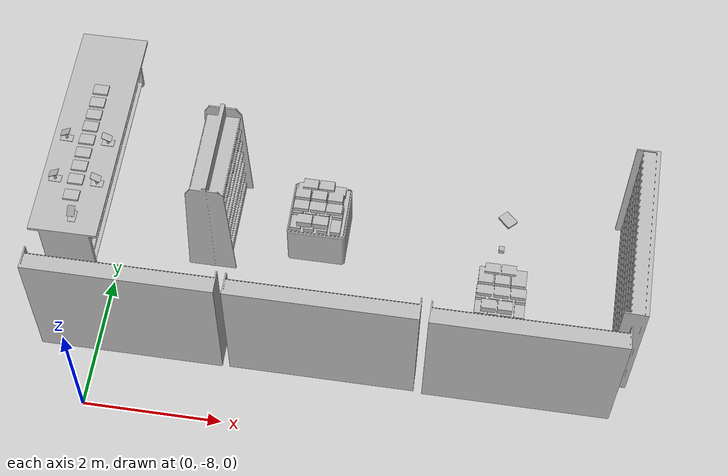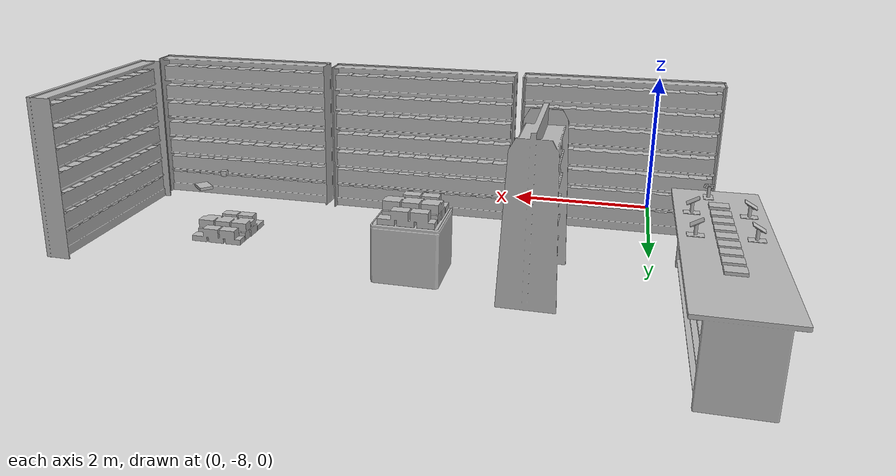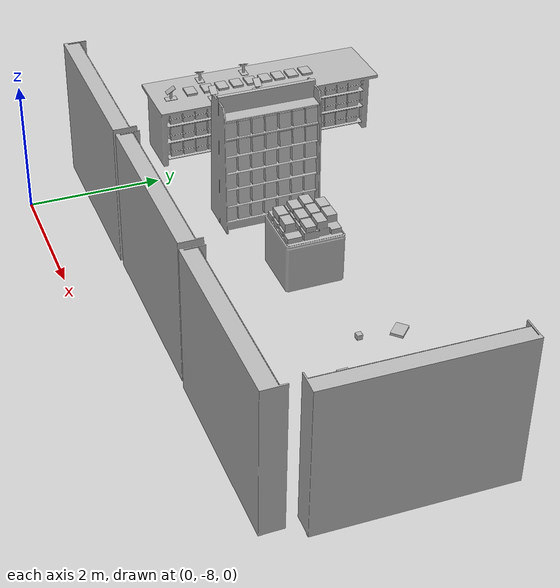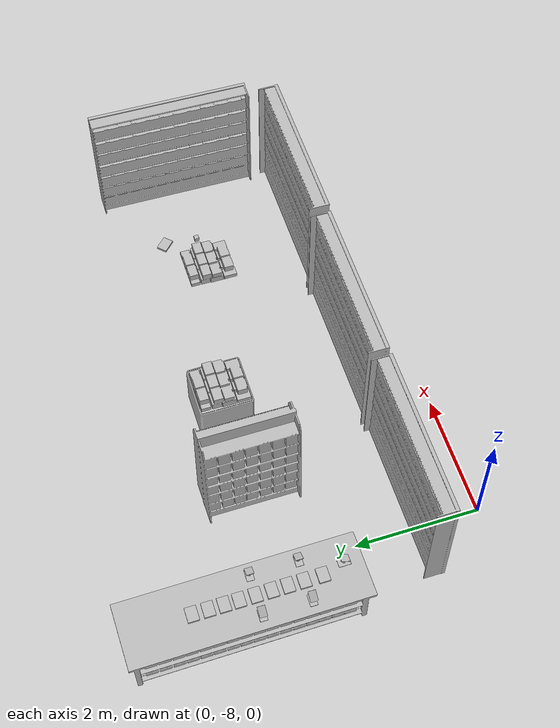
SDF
<sdf version="1.7">
 <world name="default">
  <model name="BookE_01_004">
   <link name="aws_robomaker_retail_BookE_01::link">
    <inertial>
     <mass>1</mass>
     <inertia><ixy>0</ixy><ixz>0</ixz><iyz>0</iyz><ixx>0.0666</ixx><iyy>0.0346</iyy><izz>0.0986</izz></inertia>
    </inertial>
    <collision name="collision">
     <geometry>
      <mesh>
       <uri>model://aws_robomaker_retail_BookE_01/meshes/aws_BookE_01_collision.DAE</uri>
       <scale>1 1 1</scale>
      </mesh>
     </geometry>
    </collision>
    <visual name="visual">
     <geometry>
      <mesh><uri>model://aws_robomaker_retail_BookE_01/meshes/aws_BookE_01_visual.DAE</uri></mesh>
     </geometry>
     <meta><layer>1</layer></meta>
    </visual>
   </link>
   <static>1</static>
   <pose>5.67723 -4.6492 0.946394 0.0001 6e-06 -2.35575</pose>
  </model>
  <model name="BookE_01_020">
   <link name="aws_robomaker_retail_BookE_01::link">
    <inertial>
     <mass>1</mass>
     <inertia><ixy>0</ixy><ixz>0</ixz><iyz>0</iyz><ixx>0.0666</ixx><iyy>0.0346</iyy><izz>0.0986</izz></inertia>
    </inertial>
    <collision name="collision">
     <geometry>
      <mesh>
       <uri>model://aws_robomaker_retail_BookE_01/meshes/aws_BookE_01_collision.DAE</uri>
       <scale>1 1 1</scale>
      </mesh>
     </geometry>
    </collision>
    <visual name="visual">
     <geometry>
      <mesh><uri>model://aws_robomaker_retail_BookE_01/meshes/aws_BookE_01_visual.DAE</uri></mesh>
     </geometry>
     <meta><layer>1</layer></meta>
    </visual>
   </link>
   <static>1</static>
   <pose>-0.694312 -3.53082 1.05383 4e-06 -4e-06 -1.57338</pose>
  </model>
  <model name="BookE_01_021">
   <link name="aws_robomaker_retail_BookE_01::link">
    <inertial>
     <mass>1</mass>
     <inertia><ixy>0</ixy><ixz>0</ixz><iyz>0</iyz><ixx>0.0666</ixx><iyy>0.0346</iyy><izz>0.0986</izz></inertia>
    </inertial>
    <collision name="collision">
     <geometry>
      <mesh>
       <uri>model://aws_robomaker_retail_BookE_01/meshes/aws_BookE_01_collision.DAE</uri>
       <scale>1 1 1</scale>
      </mesh>
     </geometry>
    </collision>
    <visual name="visual">
     <geometry>
      <mesh><uri>model://aws_robomaker_retail_BookE_01/meshes/aws_BookE_01_visual.DAE</uri></mesh>
     </geometry>
     <meta><layer>1</layer></meta>
    </visual>
   </link>
   <static>1</static>
   <pose>-0.694312 -3.76051 1.05383 4e-06 -4e-06 -1.57338</pose>
  </model>
  <model name="BookE_01_022">
   <link name="aws_robomaker_retail_BookE_01::link">
    <inertial>
     <mass>1</mass>
     <inertia><ixy>0</ixy><ixz>0</ixz><iyz>0</iyz><ixx>0.0666</ixx><iyy>0.0346</iyy><izz>0.0986</izz></inertia>
    </inertial>
    <collision name="collision">
     <geometry>
      <mesh>
       <uri>model://aws_robomaker_retail_BookE_01/meshes/aws_BookE_01_collision.DAE</uri>
       <scale>1 1 1</scale>
      </mesh>
     </geometry>
    </collision>
    <visual name="visual">
     <geometry>
      <mesh><uri>model://aws_robomaker_retail_BookE_01/meshes/aws_BookE_01_visual.DAE</uri></mesh>
     </geometry>
     <meta><layer>1</layer></meta>
    </visual>
   </link>
   <static>1</static>
   <pose>-0.694312 -3.98047 1.05383 4e-06 -4e-06 -1.57338</pose>
  </model>
  <model name="BookE_01_023">
   <link name="aws_robomaker_retail_BookE_01::link">
    <inertial>
     <mass>1</mass>
     <inertia><ixy>0</ixy><ixz>0</ixz><iyz>0</iyz><ixx>0.0666</ixx><iyy>0.0346</iyy><izz>0.0986</izz></inertia>
    </inertial>
    <collision name="collision">
     <geometry>
      <mesh>
       <uri>model://aws_robomaker_retail_BookE_01/meshes/aws_BookE_01_collision.DAE</uri>
       <scale>1 1 1</scale>
      </mesh>
     </geometry>
    </collision>
    <visual name="visual">
     <geometry>
      <mesh><uri>model://aws_robomaker_retail_BookE_01/meshes/aws_BookE_01_visual.DAE</uri></mesh>
     </geometry>
     <meta><layer>1</layer></meta>
    </visual>
   </link>
   <static>1</static>
   <pose>-0.694312 -4.22189 1.05383 4e-06 -4e-06 -1.57338</pose>
  </model>
  <model name="BookE_01_024">
   <link name="aws_robomaker_retail_BookE_01::link">
    <inertial>
     <mass>1</mass>
     <inertia><ixy>0</ixy><ixz>0</ixz><iyz>0</iyz><ixx>0.0666</ixx><iyy>0.0346</iyy><izz>0.0986</izz></inertia>
    </inertial>
    <collision name="collision">
     <geometry>
      <mesh>
       <uri>model://aws_robomaker_retail_BookE_01/meshes/aws_BookE_01_collision.DAE</uri>
       <scale>1 1 1</scale>
      </mesh>
     </geometry>
    </collision>
    <visual name="visual">
     <geometry>
      <mesh><uri>model://aws_robomaker_retail_BookE_01/meshes/aws_BookE_01_visual.DAE</uri></mesh>
     </geometry>
     <meta><layer>1</layer></meta>
    </visual>
   </link>
   <static>1</static>
   <pose>-0.694312 -4.46189 1.05383 4e-06 -4e-06 -1.57338</pose>
  </model>
  <model name="BookE_01_025">
   <link name="aws_robomaker_retail_BookE_01::link">
    <inertial>
     <mass>1</mass>
     <inertia><ixy>0</ixy><ixz>0</ixz><iyz>0</iyz><ixx>0.0666</ixx><iyy>0.0346</iyy><izz>0.0986</izz></inertia>
    </inertial>
    <collision name="collision">
     <geometry>
      <mesh>
       <uri>model://aws_robomaker_retail_BookE_01/meshes/aws_BookE_01_collision.DAE</uri>
       <scale>1 1 1</scale>
      </mesh>
     </geometry>
    </collision>
    <visual name="visual">
     <geometry>
      <mesh><uri>model://aws_robomaker_retail_BookE_01/meshes/aws_BookE_01_visual.DAE</uri></mesh>
     </geometry>
     <meta><layer>1</layer></meta>
    </visual>
   </link>
   <static>1</static>
   <pose>-0.694312 -4.70189 1.05383 4e-06 -4e-06 -1.57338</pose>
  </model>
  <model name="BookE_01_026">
   <link name="aws_robomaker_retail_BookE_01::link">
    <inertial>
     <mass>1</mass>
     <inertia><ixy>0</ixy><ixz>0</ixz><iyz>0</iyz><ixx>0.0666</ixx><iyy>0.0346</iyy><izz>0.0986</izz></inertia>
    </inertial>
    <collision name="collision">
     <geometry>
      <mesh>
       <uri>model://aws_robomaker_retail_BookE_01/meshes/aws_BookE_01_collision.DAE</uri>
       <scale>1 1 1</scale>
      </mesh>
     </geometry>
    </collision>
    <visual name="visual">
     <geometry>
      <mesh><uri>model://aws_robomaker_retail_BookE_01/meshes/aws_BookE_01_visual.DAE</uri></mesh>
     </geometry>
     <meta><layer>1</layer></meta>
    </visual>
   </link>
   <static>1</static>
   <pose>-0.694312 -4.94189 1.05383 4e-06 -4e-06 -1.57338</pose>
  </model>
  <model name="BookE_01_027">
   <link name="aws_robomaker_retail_BookE_01::link">
    <inertial>
     <mass>1</mass>
     <inertia><ixy>0</ixy><ixz>0</ixz><iyz>0</iyz><ixx>0.0666</ixx><iyy>0.0346</iyy><izz>0.0986</izz></inertia>
    </inertial>
    <collision name="collision">
     <geometry>
      <mesh>
       <uri>model://aws_robomaker_retail_BookE_01/meshes/aws_BookE_01_collision.DAE</uri>
       <scale>1 1 1</scale>
      </mesh>
     </geometry>
    </collision>
    <visual name="visual">
     <geometry>
      <mesh><uri>model://aws_robomaker_retail_BookE_01/meshes/aws_BookE_01_visual.DAE</uri></mesh>
     </geometry>
     <meta><layer>1</layer></meta>
    </visual>
   </link>
   <static>1</static>
   <pose>-0.694312 -5.22189 1.05383 4e-06 -4e-06 -1.57338</pose>
  </model>
  <model name="BookE_01_028">
   <link name="aws_robomaker_retail_BookE_01::link">
    <inertial>
     <mass>1</mass>
     <inertia><ixy>0</ixy><ixz>0</ixz><iyz>0</iyz><ixx>0.0666</ixx><iyy>0.0346</iyy><izz>0.0986</izz></inertia>
    </inertial>
    <collision name="collision">
     <geometry>
      <mesh>
       <uri>model://aws_robomaker_retail_BookE_01/meshes/aws_BookE_01_collision.DAE</uri>
       <scale>1 1 1</scale>
      </mesh>
     </geometry>
    </collision>
    <visual name="visual">
     <geometry>
      <mesh><uri>model://aws_robomaker_retail_BookE_01/meshes/aws_BookE_01_visual.DAE</uri></mesh>
     </geometry>
     <meta><layer>1</layer></meta>
    </visual>
   </link>
   <static>1</static>
   <pose>-0.694312 -3.29189 1.05383 4e-06 -4e-06 -1.57338</pose>
  </model>
  <model name="BookD_01_001">
   <link name="aws_robomaker_retail_BookD_01::link">
    <inertial><mass>0.5</mass></inertial>
    <collision name="collision">
     <geometry>
      <mesh>
       <uri>model://aws_robomaker_retail_BookD_01/meshes/aws_BookD_01_collision.DAE</uri>
       <scale>1 1 1</scale>
      </mesh>
     </geometry>
    </collision>
    <visual name="visual">
     <geometry>
      <mesh><uri>model://aws_robomaker_retail_BookD_01/meshes/aws_BookD_01_visual.DAE</uri></mesh>
     </geometry>
     <meta><layer>1</layer></meta>
    </visual>
   </link>
   <static>1</static>
   <pose>5.72005 -5.36588 0.022179 0.003452 -1e-06 0.000652</pose>
  </model>
  <model name="BookF_01_002">
   <link name="aws_robomaker_retail_BookF_01::link">
    <inertial>
     <mass>10</mass>
     <inertia>
      <ixx>0.583817</ixx>
      <ixy>0</ixy>
      <ixz>0</ixz>
      <iyy>0.502925</iyy>
      <iyz>0</iyz>
      <izz>0.99304</izz>
     </inertia>
    </inertial>
    <collision name="collision">
     <geometry>
      <mesh>
       <uri>model://aws_robomaker_retail_BookF_01/meshes/aws_BookF_01_collision.DAE</uri>
       <scale>1 1 1</scale>
      </mesh>
     </geometry>
    </collision>
    <visual name="visual">
     <geometry>
      <mesh><uri>model://aws_robomaker_retail_BookF_01/meshes/aws_BookF_01_visual.DAE</uri></mesh>
     </geometry>
     <meta><layer>1</layer></meta>
    </visual>
   </link>
   <static>1</static>
   <pose>2.90298 -4.76075 0.75826 0.00345 6e-06 -0.00225</pose>
  </model>
  <model name="BookshelfA_01_002">
   <link name="aws_robomaker_retail_BookshelfA_01::link">
    <inertial>
     <mass>50</mass>
     <inertia><ixx>27.7341</ixx><ixy>0</ixy><ixz>0</ixz><iyy>20.9361</iyy><iyz>0</iyz><izz>11.3596</izz></inertia>
    </inertial>
    <collision name="collision">
     <geometry>
      <mesh>
       <uri>model://aws_robomaker_retail_BookshelfA_01/meshes/aws_BookshelfA_01_collision.DAE</uri>
       <scale>1 1 1</scale>
      </mesh>
     </geometry>
    </collision>
    <visual name="visual">
     <geometry>
      <mesh><uri>model://aws_robomaker_retail_BookshelfA_01/meshes/aws_BookshelfA_01_visual.DAE</uri></mesh>
     </geometry>
     <meta><layer>1</layer></meta>
    </visual>
   </link>
   <static>1</static>
   <pose>1.40515 -4.76165 0.003411 0 -0 0</pose>
  </model>
  <model name="BookshelfB_01_003">
   <link name="aws_robomaker_retail_BookshelfB_01::link">
    <inertial>
     <mass>50</mass>
     <inertia><ixx>19.8742</ixx><ixy>0</ixy><ixz>0</ixz><iyy>49.1263</iyy><iyz>0</iyz><izz>30.2231</izz></inertia>
    </inertial>
    <collision name="collision">
     <geometry>
      <mesh>
       <uri>model://aws_robomaker_retail_BookshelfB_01/meshes/aws_BookshelfB_01_collision.DAE</uri>
       <scale>1 1 1</scale>
      </mesh>
     </geometry>
    </collision>
    <visual name="visual">
     <geometry>
      <mesh><uri>model://aws_robomaker_retail_BookshelfB_01/meshes/aws_BookshelfB_01_visual.DAE</uri></mesh>
     </geometry>
     <meta><layer>1</layer></meta>
    </visual>
   </link>
   <static>1</static>
   <pose>0.522246 -6.9715 0.017947 -0.003292 0 0</pose>
  </model>
  <model name="BookshelfB_01_004">
   <link name="aws_robomaker_retail_BookshelfB_01::link">
    <inertial>
     <mass>50</mass>
     <inertia><ixx>19.8742</ixx><ixy>0</ixy><ixz>0</ixz><iyy>49.1263</iyy><iyz>0</iyz><izz>30.2231</izz></inertia>
    </inertial>
    <collision name="collision">
     <geometry>
      <mesh>
       <uri>model://aws_robomaker_retail_BookshelfB_01/meshes/aws_BookshelfB_01_collision.DAE</uri>
       <scale>1 1 1</scale>
      </mesh>
     </geometry>
    </collision>
    <visual name="visual">
     <geometry>
      <mesh><uri>model://aws_robomaker_retail_BookshelfB_01/meshes/aws_BookshelfB_01_visual.DAE</uri></mesh>
     </geometry>
     <meta><layer>1</layer></meta>
    </visual>
   </link>
   <static>1</static>
   <pose>3.29339 -6.96366 0.017383 8e-06 -2e-06 -0</pose>
  </model>
  <model name="BookshelfB_01_005">
   <link name="aws_robomaker_retail_BookshelfB_01::link">
    <inertial>
     <mass>50</mass>
     <inertia><ixx>19.8742</ixx><ixy>0</ixy><ixz>0</ixz><iyy>49.1263</iyy><iyz>0</iyz><izz>30.2231</izz></inertia>
    </inertial>
    <collision name="collision">
     <geometry>
      <mesh>
       <uri>model://aws_robomaker_retail_BookshelfB_01/meshes/aws_BookshelfB_01_collision.DAE</uri>
       <scale>1 1 1</scale>
      </mesh>
     </geometry>
    </collision>
    <visual name="visual">
     <geometry>
      <mesh><uri>model://aws_robomaker_retail_BookshelfB_01/meshes/aws_BookshelfB_01_visual.DAE</uri></mesh>
     </geometry>
     <meta><layer>1</layer></meta>
    </visual>
   </link>
   <static>1</static>
   <pose>6.08038 -6.98766 0.017409 0.000174 4e-06 0</pose>
  </model>
  <model name="BookshelfB_01_006">
   <link name="aws_robomaker_retail_BookshelfB_01::link">
    <inertial>
     <mass>50</mass>
     <inertia><ixx>19.8742</ixx><ixy>0</ixy><ixz>0</ixz><iyy>49.1263</iyy><iyz>0</iyz><izz>30.2231</izz></inertia>
    </inertial>
    <collision name="collision">
     <geometry>
      <mesh>
       <uri>model://aws_robomaker_retail_BookshelfB_01/meshes/aws_BookshelfB_01_collision.DAE</uri>
       <scale>1 1 1</scale>
      </mesh>
     </geometry>
    </collision>
    <visual name="visual">
     <geometry>
      <mesh><uri>model://aws_robomaker_retail_BookshelfB_01/meshes/aws_BookshelfB_01_visual.DAE</uri></mesh>
     </geometry>
     <meta><layer>1</layer></meta>
    </visual>
   </link>
   <static>1</static>
   <pose>7.47833 -5.2983 0.017443 -0.001974 -0.000211 1.55406</pose>
  </model>
  <model name="BookshelfC_01_002">
   <link name="aws_robomaker_retail_BookshelfC_01::link">
    <inertial>
     <mass>50</mass>
     <inertia><ixx>5.5865</ixx><ixy>0</ixy><ixz>0</ixz><iyy>5.47324</iyy><iyz>0</iyz><izz>6.23277</izz></inertia>
    </inertial>
    <collision name="collision">
     <geometry>
      <mesh>
       <uri>model://aws_robomaker_retail_BookshelfC_01/meshes/aws_BookshelfC_01_collision.DAE</uri>
       <scale>1 1 1</scale>
      </mesh>
     </geometry>
    </collision>
    <visual name="visual">
     <geometry>
      <mesh><uri>model://aws_robomaker_retail_BookshelfC_01/meshes/aws_BookshelfC_01_visual.DAE</uri></mesh>
     </geometry>
     <meta><layer>1</layer></meta>
    </visual>
   </link>
   <static>1</static>
   <pose>2.91545 -4.76171 -0.003455 0.003452 -0 1.4e-05</pose>
  </model>
  <model name="DeskA_01_004">
   <link name="aws_robomaker_retail_DeskA_01::link">
    <inertial>
     <mass>20</mass>
     <inertia><ixx>3.49717</ixx><ixy>0</ixy><ixz>0</ixz><iyy>23.5599</iyy><iyz>0</iyz><izz>23.5702</izz></inertia>
    </inertial>
    <collision name="collision">
     <geometry>
      <mesh>
       <uri>model://aws_robomaker_retail_DeskA_01/meshes/aws_DeskA_01_collision.DAE</uri>
       <scale>1 1 1</scale>
      </mesh>
     </geometry>
    </collision>
    <visual name="visual">
     <geometry>
      <mesh><uri>model://aws_robomaker_retail_DeskA_01/meshes/aws_DeskA_01_visual.DAE</uri></mesh>
     </geometry>
     <meta><layer>1</layer></meta>
    </visual>
   </link>
   <static>1</static>
   <pose>-0.701688 -4.04929 0.014866 0 0 -1.5661</pose>
  </model>
  <model name="TabletB_01_003">
   <link name="aws_robomaker_retail_TabletB_01::link">
    <inertial>
     <mass>0.161</mass>
     <inertia>
      <ixx>0.346954</ixx>
      <ixy>0</ixy>
      <ixz>0</ixz>
      <iyy>0.177288</iyy>
      <iyz>0</iyz>
      <izz>0.521826</izz>
     </inertia>
    </inertial>
    <collision name="collision">
     <geometry>
      <mesh>
       <uri>model://aws_robomaker_retail_TabletB_01/meshes/aws_TabletB_01_collision.DAE</uri>
       <scale>1 1 1</scale>
      </mesh>
     </geometry>
    </collision>
    <visual name="visual">
     <geometry>
      <mesh><uri>model://aws_robomaker_retail_TabletB_01/meshes/aws_TabletB_01_visual.DAE</uri></mesh>
     </geometry>
     <meta><layer>1</layer></meta>
    </visual>
   </link>
   <static>1</static>
   <pose>-0.598457 -5.57073 1.18472 0.550862 -0.007302 0</pose>
  </model>
  <model name="TabletB_01_005">
   <link name="aws_robomaker_retail_TabletB_01::link">
    <inertial>
     <mass>0.161</mass>
     <inertia>
      <ixx>0.346954</ixx>
      <ixy>0</ixy>
      <ixz>0</ixz>
      <iyy>0.177288</iyy>
      <iyz>0</iyz>
      <izz>0.521826</izz>
     </inertia>
    </inertial>
    <collision name="collision">
     <geometry>
      <mesh>
       <uri>model://aws_robomaker_retail_TabletB_01/meshes/aws_TabletB_01_collision.DAE</uri>
       <scale>1 1 1</scale>
      </mesh>
     </geometry>
    </collision>
    <visual name="visual">
     <geometry>
      <mesh><uri>model://aws_robomaker_retail_TabletB_01/meshes/aws_TabletB_01_visual.DAE</uri></mesh>
     </geometry>
     <meta><layer>1</layer></meta>
    </visual>
   </link>
   <static>1</static>
   <pose>-0.378561 -4.95498 1.18472 0.518383 0.023342 1.56451</pose>
  </model>
  <model name="TabletB_01_006">
   <link name="aws_robomaker_retail_TabletB_01::link">
    <inertial>
     <mass>0.161</mass>
     <inertia>
      <ixx>0.346954</ixx>
      <ixy>0</ixy>
      <ixz>0</ixz>
      <iyy>0.177288</iyy>
      <iyz>0</iyz>
      <izz>0.521826</izz>
     </inertia>
    </inertial>
    <collision name="collision">
     <geometry>
      <mesh>
       <uri>model://aws_robomaker_retail_TabletB_01/meshes/aws_TabletB_01_collision.DAE</uri>
       <scale>1 1 1</scale>
      </mesh>
     </geometry>
    </collision>
    <visual name="visual">
     <geometry>
      <mesh><uri>model://aws_robomaker_retail_TabletB_01/meshes/aws_TabletB_01_visual.DAE</uri></mesh>
     </geometry>
     <meta><layer>1</layer></meta>
    </visual>
   </link>
   <static>1</static>
   <pose>-0.378561 -4.22717 1.18472 0.518383 0.023342 1.56451</pose>
  </model>
  <model name="TabletB_01_008">
   <link name="aws_robomaker_retail_TabletB_01::link">
    <inertial>
     <mass>0.161</mass>
     <inertia>
      <ixx>0.346954</ixx>
      <ixy>0</ixy>
      <ixz>0</ixz>
      <iyy>0.177288</iyy>
      <iyz>0</iyz>
      <izz>0.521826</izz>
     </inertia>
    </inertial>
    <collision name="collision">
     <geometry>
      <mesh>
       <uri>model://aws_robomaker_retail_TabletB_01/meshes/aws_TabletB_01_collision.DAE</uri>
       <scale>1 1 1</scale>
      </mesh>
     </geometry>
    </collision>
    <visual name="visual">
     <geometry>
      <mesh><uri>model://aws_robomaker_retail_TabletB_01/meshes/aws_TabletB_01_visual.DAE</uri></mesh>
     </geometry>
     <meta><layer>1</layer></meta>
    </visual>
   </link>
   <static>1</static>
   <pose>-1.00385 -4.96485 1.18472 0.512461 -0.058405 -1.6041</pose>
  </model>
  <model name="TabletB_01_009">
   <link name="aws_robomaker_retail_TabletB_01::link">
    <inertial>
     <mass>0.161</mass>
     <inertia>
      <ixx>0.346954</ixx>
      <ixy>0</ixy>
      <ixz>0</ixz>
      <iyy>0.177288</iyy>
      <iyz>0</iyz>
      <izz>0.521826</izz>
     </inertia>
    </inertial>
    <collision name="collision">
     <geometry>
      <mesh>
       <uri>model://aws_robomaker_retail_TabletB_01/meshes/aws_TabletB_01_collision.DAE</uri>
       <scale>1 1 1</scale>
      </mesh>
     </geometry>
    </collision>
    <visual name="visual">
     <geometry>
      <mesh><uri>model://aws_robomaker_retail_TabletB_01/meshes/aws_TabletB_01_visual.DAE</uri></mesh>
     </geometry>
     <meta><layer>1</layer></meta>
    </visual>
   </link>
   <static>1</static>
   <pose>-1.00385 -4.22402 1.18472 0.512461 -0.058405 -1.6041</pose>
  </model>
  <model name="Holder_01_001">
   <link name="aws_robomaker_retail_Holder_01::link">
    <inertial><mass>1</mass></inertial>
    <collision name="collision">
     <geometry>
      <mesh>
       <uri>model://aws_robomaker_retail_Holder_01/meshes/aws_Holder_01_collision.DAE</uri>
       <scale>1 1 1</scale>
      </mesh>
     </geometry>
    </collision>
    <visual name="visual">
     <geometry>
      <mesh><uri>model://aws_robomaker_retail_Holder_01/meshes/aws_Holder_01_visual.DAE</uri></mesh>
     </geometry>
     <meta><layer>2</layer></meta>
    </visual>
   </link>
   <static>1</static>
   <pose>-0.599181 -5.57119 1.03776 0 -0 0</pose>
  </model>
  <model name="Holder_01_013">
   <link name="aws_robomaker_retail_Holder_01::link">
    <inertial><mass>1</mass></inertial>
    <collision name="collision">
     <geometry>
      <mesh>
       <uri>model://aws_robomaker_retail_Holder_01/meshes/aws_Holder_01_collision.DAE</uri>
       <scale>1 1 1</scale>
      </mesh>
     </geometry>
    </collision>
    <visual name="visual">
     <geometry>
      <mesh><uri>model://aws_robomaker_retail_Holder_01/meshes/aws_Holder_01_visual.DAE</uri></mesh>
     </geometry>
     <meta><layer>2</layer></meta>
    </visual>
   </link>
   <static>1</static>
   <pose>-0.372529 -4.96036 1.03776 0 -0 1.55</pose>
  </model>
  <model name="Holder_01_014">
   <link name="aws_robomaker_retail_Holder_01::link">
    <inertial><mass>1</mass></inertial>
    <collision name="collision">
     <geometry>
      <mesh>
       <uri>model://aws_robomaker_retail_Holder_01/meshes/aws_Holder_01_collision.DAE</uri>
       <scale>1 1 1</scale>
      </mesh>
     </geometry>
    </collision>
    <visual name="visual">
     <geometry>
      <mesh><uri>model://aws_robomaker_retail_Holder_01/meshes/aws_Holder_01_visual.DAE</uri></mesh>
     </geometry>
     <meta><layer>2</layer></meta>
    </visual>
   </link>
   <static>1</static>
   <pose>-0.372529 -4.22682 1.03776 0 -0 1.55</pose>
  </model>
  <model name="Holder_01_016">
   <link name="aws_robomaker_retail_Holder_01::link">
    <inertial><mass>1</mass></inertial>
    <collision name="collision">
     <geometry>
      <mesh>
       <uri>model://aws_robomaker_retail_Holder_01/meshes/aws_Holder_01_collision.DAE</uri>
       <scale>1 1 1</scale>
      </mesh>
     </geometry>
    </collision>
    <visual name="visual">
     <geometry>
      <mesh><uri>model://aws_robomaker_retail_Holder_01/meshes/aws_Holder_01_visual.DAE</uri></mesh>
     </geometry>
     <meta><layer>2</layer></meta>
    </visual>
   </link>
   <static>1</static>
   <pose>-1.0017 -4.96152 1.03776 0 0 -1.58865</pose>
  </model>
  <model name="Holder_01_017">
   <link name="aws_robomaker_retail_Holder_01::link">
    <inertial><mass>1</mass></inertial>
    <collision name="collision">
     <geometry>
      <mesh>
       <uri>model://aws_robomaker_retail_Holder_01/meshes/aws_Holder_01_collision.DAE</uri>
       <scale>1 1 1</scale>
      </mesh>
     </geometry>
    </collision>
    <visual name="visual">
     <geometry>
      <mesh><uri>model://aws_robomaker_retail_Holder_01/meshes/aws_Holder_01_visual.DAE</uri></mesh>
     </geometry>
     <meta><layer>2</layer></meta>
    </visual>
   </link>
   <static>1</static>
   <pose>-1.0017 -4.2261 1.03776 0 0 -1.58865</pose>
  </model>
  <model name="MagicCube_01_001">
   <link name="aws_robomaker_retail_MagicCube_01::link">
    <inertial>
     <mass>0.2</mass>
     <inertia><ixx>0.01</ixx><ixy>0</ixy><ixz>0</ixz><iyy>0.01</iyy><iyz>0</iyz><izz>0.01</izz></inertia>
    </inertial>
    <collision name="collision">
     <geometry>
      <mesh>
       <uri>model://aws_robomaker_retail_MagicCube_01/meshes/aws_MagicCube_01_collision.DAE</uri>
       <scale>1 1 1</scale>
      </mesh>
     </geometry>
    </collision>
    <visual name="visual">
     <geometry>
      <mesh><uri>model://aws_robomaker_retail_MagicCube_01/meshes/aws_MagicCube_01_visual.DAE</uri></mesh>
     </geometry>
     <meta><layer>1</layer></meta>
    </visual>
   </link>
   <static>1</static>
   <pose>5.66756 -5.17491 0.968597 1.55994 -1e-06 -1.55541</pose>
  </model>
 </world>
</sdf>
